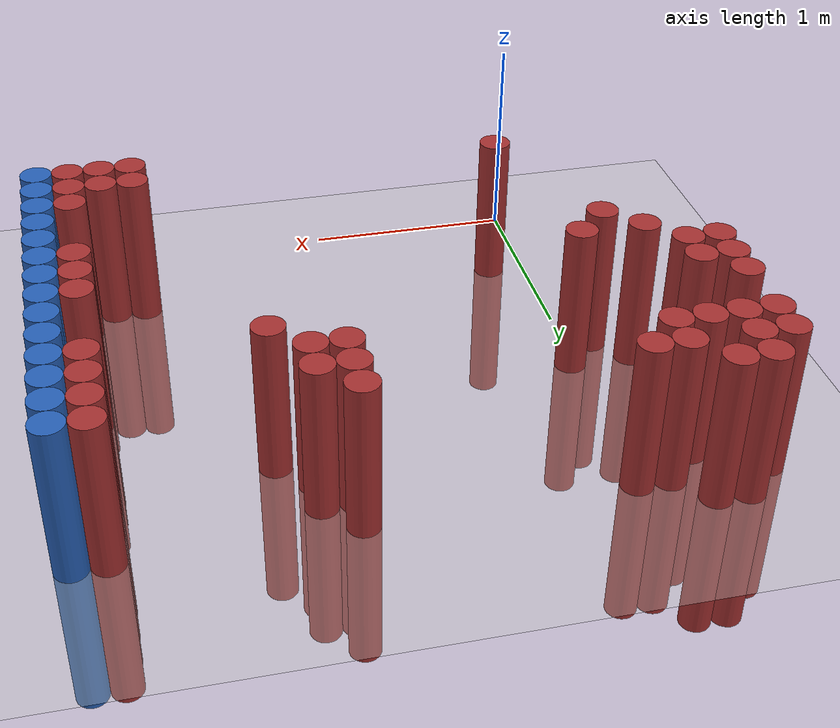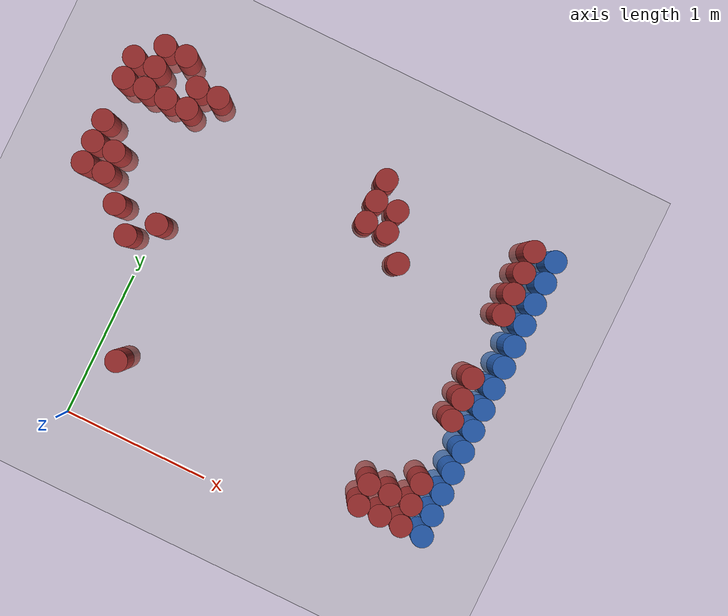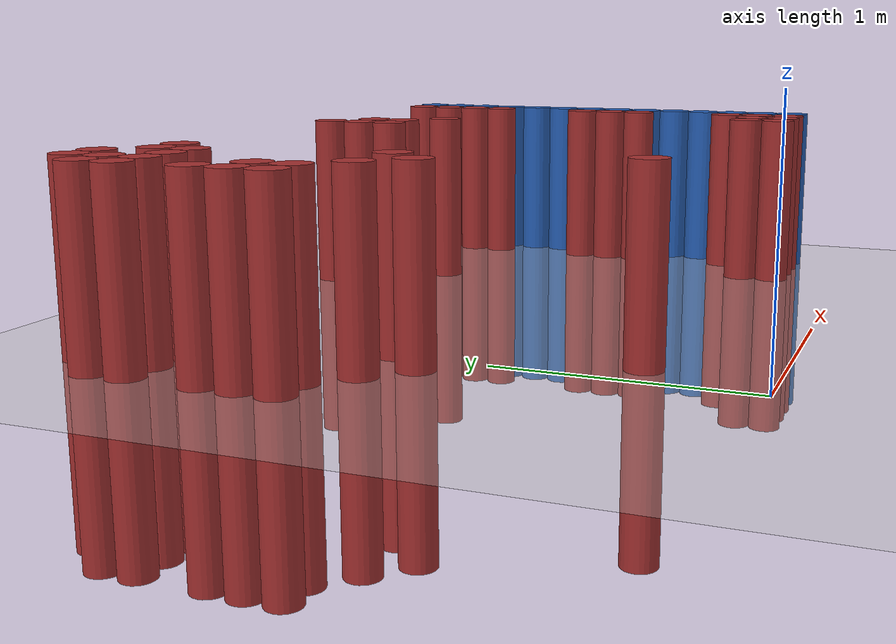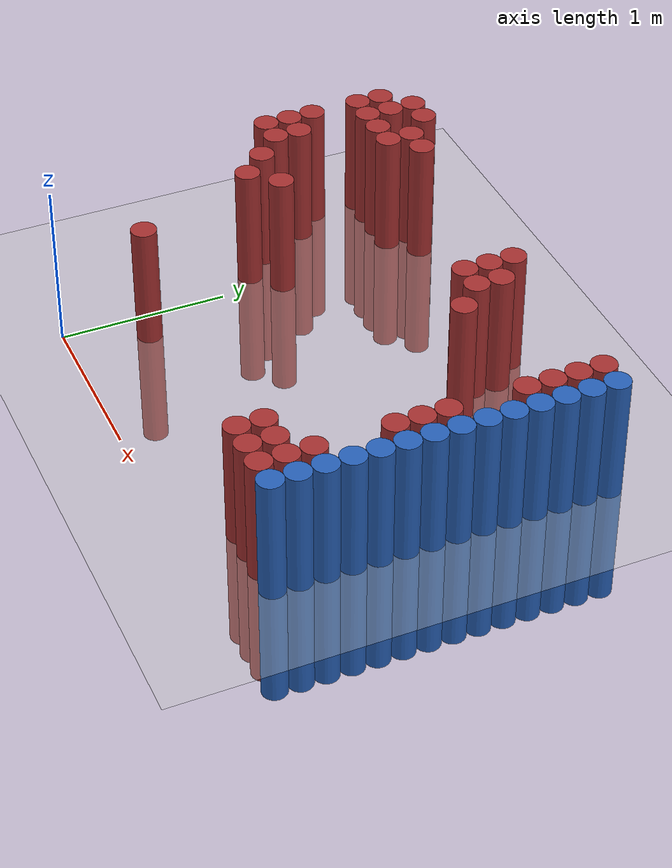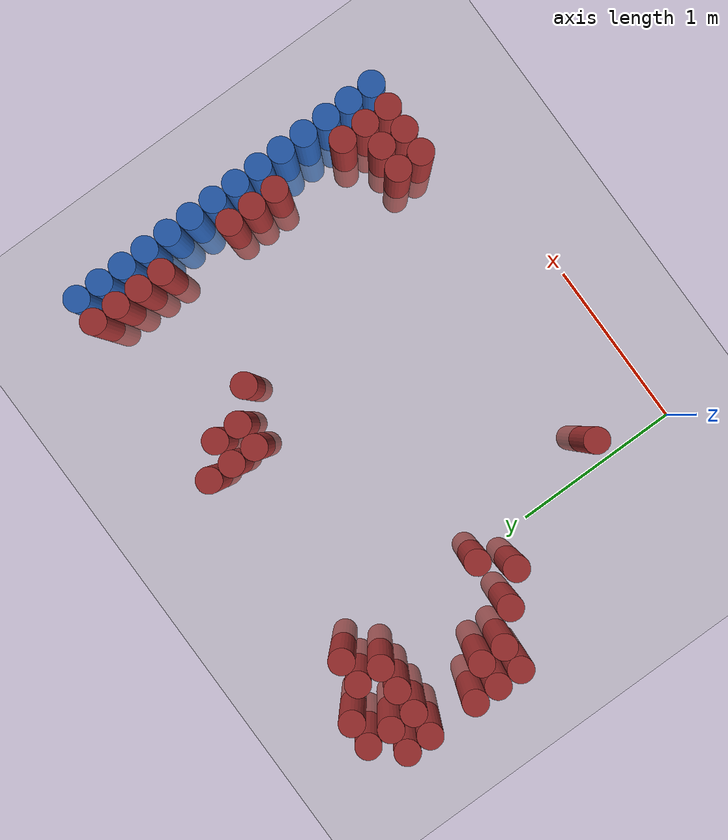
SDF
<sdf version="1.6">
 <world name="default">
  <model name="ground_plane">
   <static>1</static>
   <link name="link">
    <collision name="collision">
     <geometry><plane><normal>0 0 1</normal><size>100 100</size></plane></geometry>
     <surface><friction><ode><mu>100</mu><mu2>50</mu2></ode></friction></surface>
    </collision>
    <visual name="visual">
     <cast_shadows>0</cast_shadows>
     <geometry><plane><normal>0 0 1</normal><size>100 100</size></plane></geometry>
     <material>
      <script><uri>file://media/materials/scripts/gazebo.material</uri><name>Gazebo/Grey</name></script>
     </material>
    </visual>
   </link>
  </model>
  <model name="unit_cylinder_162">
   <static>1</static>
   <pose>-0.575000 1.525000 0.000000 0.000000 0.000000 0.000000</pose>
   <link name="link">
    <inertial>
     <mass>1</mass>
     <inertia><ixx>0.145833</ixx><ixy>0</ixy><ixz>0</ixz><iyy>0.145833</iyy><iyz>0</iyz><izz>0.125</izz></inertia>
    </inertial>
    <collision name="collision">
     <geometry><cylinder><radius>0.075000</radius><length>1.5</length></cylinder></geometry>
    </collision>
    <visual name="visual">
     <geometry><cylinder><radius>0.075000</radius><length>1.5</length></cylinder></geometry>
     <material>
      <ambient>0.648000 0.192000 0.192000 1</ambient>
      <diffuse>0.648000 0.192000 0.192000 1</diffuse>
     </material>
     <material>
      <script><name>Gazebo/Grey</name><uri>file://media/materials/scripts/gazebo.material</uri></script>
     </material>
    </visual>
   </link>
  </model>
  <model name="unit_cylinder_163">
   <static>1</static>
   <pose>-0.575000 1.675000 0.000000 0.000000 0.000000 0.000000</pose>
   <link name="link">
    <inertial>
     <mass>1</mass>
     <inertia><ixx>0.145833</ixx><ixy>0</ixy><ixz>0</ixz><iyy>0.145833</iyy><iyz>0</iyz><izz>0.125</izz></inertia>
    </inertial>
    <collision name="collision">
     <geometry><cylinder><radius>0.075000</radius><length>1.5</length></cylinder></geometry>
    </collision>
    <visual name="visual">
     <geometry><cylinder><radius>0.075000</radius><length>1.5</length></cylinder></geometry>
     <material>
      <ambient>0.648000 0.192000 0.192000 1</ambient>
      <diffuse>0.648000 0.192000 0.192000 1</diffuse>
     </material>
     <material>
      <script><name>Gazebo/Grey</name><uri>file://media/materials/scripts/gazebo.material</uri></script>
     </material>
    </visual>
   </link>
  </model>
  <model name="unit_cylinder_164">
   <static>1</static>
   <pose>-0.575000 1.825000 0.000000 0.000000 0.000000 0.000000</pose>
   <link name="link">
    <inertial>
     <mass>1</mass>
     <inertia><ixx>0.145833</ixx><ixy>0</ixy><ixz>0</ixz><iyy>0.145833</iyy><iyz>0</iyz><izz>0.125</izz></inertia>
    </inertial>
    <collision name="collision">
     <geometry><cylinder><radius>0.075000</radius><length>1.5</length></cylinder></geometry>
    </collision>
    <visual name="visual">
     <geometry><cylinder><radius>0.075000</radius><length>1.5</length></cylinder></geometry>
     <material>
      <ambient>0.648000 0.192000 0.192000 1</ambient>
      <diffuse>0.648000 0.192000 0.192000 1</diffuse>
     </material>
     <material>
      <script><name>Gazebo/Grey</name><uri>file://media/materials/scripts/gazebo.material</uri></script>
     </material>
    </visual>
   </link>
  </model>
  <model name="unit_cylinder_165">
   <static>1</static>
   <pose>-0.575000 2.125000 0.000000 0.000000 0.000000 0.000000</pose>
   <link name="link">
    <inertial>
     <mass>1</mass>
     <inertia><ixx>0.145833</ixx><ixy>0</ixy><ixz>0</ixz><iyy>0.145833</iyy><iyz>0</iyz><izz>0.125</izz></inertia>
    </inertial>
    <collision name="collision">
     <geometry><cylinder><radius>0.075000</radius><length>1.5</length></cylinder></geometry>
    </collision>
    <visual name="visual">
     <geometry><cylinder><radius>0.075000</radius><length>1.5</length></cylinder></geometry>
     <material>
      <ambient>0.648000 0.192000 0.192000 1</ambient>
      <diffuse>0.648000 0.192000 0.192000 1</diffuse>
     </material>
     <material>
      <script><name>Gazebo/Grey</name><uri>file://media/materials/scripts/gazebo.material</uri></script>
     </material>
    </visual>
   </link>
  </model>
  <model name="unit_cylinder_166">
   <static>1</static>
   <pose>-0.575000 2.275000 0.000000 0.000000 0.000000 0.000000</pose>
   <link name="link">
    <inertial>
     <mass>1</mass>
     <inertia><ixx>0.145833</ixx><ixy>0</ixy><ixz>0</ixz><iyy>0.145833</iyy><iyz>0</iyz><izz>0.125</izz></inertia>
    </inertial>
    <collision name="collision">
     <geometry><cylinder><radius>0.075000</radius><length>1.5</length></cylinder></geometry>
    </collision>
    <visual name="visual">
     <geometry><cylinder><radius>0.075000</radius><length>1.5</length></cylinder></geometry>
     <material>
      <ambient>0.648000 0.192000 0.192000 1</ambient>
      <diffuse>0.648000 0.192000 0.192000 1</diffuse>
     </material>
     <material>
      <script><name>Gazebo/Grey</name><uri>file://media/materials/scripts/gazebo.material</uri></script>
     </material>
    </visual>
   </link>
  </model>
  <model name="unit_cylinder_169">
   <static>1</static>
   <pose>-0.425000 1.525000 0.000000 0.000000 0.000000 0.000000</pose>
   <link name="link">
    <inertial>
     <mass>1</mass>
     <inertia><ixx>0.145833</ixx><ixy>0</ixy><ixz>0</ixz><iyy>0.145833</iyy><iyz>0</iyz><izz>0.125</izz></inertia>
    </inertial>
    <collision name="collision">
     <geometry><cylinder><radius>0.075000</radius><length>1.5</length></cylinder></geometry>
    </collision>
    <visual name="visual">
     <geometry><cylinder><radius>0.075000</radius><length>1.5</length></cylinder></geometry>
     <material>
      <ambient>0.648000 0.192000 0.192000 1</ambient>
      <diffuse>0.648000 0.192000 0.192000 1</diffuse>
     </material>
     <material>
      <script><name>Gazebo/Grey</name><uri>file://media/materials/scripts/gazebo.material</uri></script>
     </material>
    </visual>
   </link>
  </model>
  <model name="unit_cylinder_170">
   <static>1</static>
   <pose>-0.425000 1.675000 0.000000 0.000000 0.000000 0.000000</pose>
   <link name="link">
    <inertial>
     <mass>1</mass>
     <inertia><ixx>0.145833</ixx><ixy>0</ixy><ixz>0</ixz><iyy>0.145833</iyy><iyz>0</iyz><izz>0.125</izz></inertia>
    </inertial>
    <collision name="collision">
     <geometry><cylinder><radius>0.075000</radius><length>1.5</length></cylinder></geometry>
    </collision>
    <visual name="visual">
     <geometry><cylinder><radius>0.075000</radius><length>1.5</length></cylinder></geometry>
     <material>
      <ambient>0.648000 0.192000 0.192000 1</ambient>
      <diffuse>0.648000 0.192000 0.192000 1</diffuse>
     </material>
     <material>
      <script><name>Gazebo/Grey</name><uri>file://media/materials/scripts/gazebo.material</uri></script>
     </material>
    </visual>
   </link>
  </model>
  <model name="unit_cylinder_171">
   <static>1</static>
   <pose>-0.425000 2.125000 0.000000 0.000000 0.000000 0.000000</pose>
   <link name="link">
    <inertial>
     <mass>1</mass>
     <inertia><ixx>0.145833</ixx><ixy>0</ixy><ixz>0</ixz><iyy>0.145833</iyy><iyz>0</iyz><izz>0.125</izz></inertia>
    </inertial>
    <collision name="collision">
     <geometry><cylinder><radius>0.075000</radius><length>1.5</length></cylinder></geometry>
    </collision>
    <visual name="visual">
     <geometry><cylinder><radius>0.075000</radius><length>1.5</length></cylinder></geometry>
     <material>
      <ambient>0.648000 0.192000 0.192000 1</ambient>
      <diffuse>0.648000 0.192000 0.192000 1</diffuse>
     </material>
     <material>
      <script><name>Gazebo/Grey</name><uri>file://media/materials/scripts/gazebo.material</uri></script>
     </material>
    </visual>
   </link>
  </model>
  <model name="unit_cylinder_172">
   <static>1</static>
   <pose>-0.425000 2.275000 0.000000 0.000000 0.000000 0.000000</pose>
   <link name="link">
    <inertial>
     <mass>1</mass>
     <inertia><ixx>0.145833</ixx><ixy>0</ixy><ixz>0</ixz><iyy>0.145833</iyy><iyz>0</iyz><izz>0.125</izz></inertia>
    </inertial>
    <collision name="collision">
     <geometry><cylinder><radius>0.075000</radius><length>1.5</length></cylinder></geometry>
    </collision>
    <visual name="visual">
     <geometry><cylinder><radius>0.075000</radius><length>1.5</length></cylinder></geometry>
     <material>
      <ambient>0.648000 0.192000 0.192000 1</ambient>
      <diffuse>0.648000 0.192000 0.192000 1</diffuse>
     </material>
     <material>
      <script><name>Gazebo/Grey</name><uri>file://media/materials/scripts/gazebo.material</uri></script>
     </material>
    </visual>
   </link>
  </model>
  <model name="unit_cylinder_173">
   <static>1</static>
   <pose>-0.425000 2.425000 0.000000 0.000000 0.000000 0.000000</pose>
   <link name="link">
    <inertial>
     <mass>1</mass>
     <inertia><ixx>0.145833</ixx><ixy>0</ixy><ixz>0</ixz><iyy>0.145833</iyy><iyz>0</iyz><izz>0.125</izz></inertia>
    </inertial>
    <collision name="collision">
     <geometry><cylinder><radius>0.075000</radius><length>1.5</length></cylinder></geometry>
    </collision>
    <visual name="visual">
     <geometry><cylinder><radius>0.075000</radius><length>1.5</length></cylinder></geometry>
     <material>
      <ambient>0.648000 0.192000 0.192000 1</ambient>
      <diffuse>0.648000 0.192000 0.192000 1</diffuse>
     </material>
     <material>
      <script><name>Gazebo/Grey</name><uri>file://media/materials/scripts/gazebo.material</uri></script>
     </material>
    </visual>
   </link>
  </model>
  <model name="unit_cylinder_175">
   <static>1</static>
   <pose>-0.275000 1.375000 0.000000 0.000000 0.000000 0.000000</pose>
   <link name="link">
    <inertial>
     <mass>1</mass>
     <inertia><ixx>0.145833</ixx><ixy>0</ixy><ixz>0</ixz><iyy>0.145833</iyy><iyz>0</iyz><izz>0.125</izz></inertia>
    </inertial>
    <collision name="collision">
     <geometry><cylinder><radius>0.075000</radius><length>1.5</length></cylinder></geometry>
    </collision>
    <visual name="visual">
     <geometry><cylinder><radius>0.075000</radius><length>1.5</length></cylinder></geometry>
     <material>
      <ambient>0.648000 0.192000 0.192000 1</ambient>
      <diffuse>0.648000 0.192000 0.192000 1</diffuse>
     </material>
     <material>
      <script><name>Gazebo/Grey</name><uri>file://media/materials/scripts/gazebo.material</uri></script>
     </material>
    </visual>
   </link>
  </model>
  <model name="unit_cylinder_176">
   <static>1</static>
   <pose>-0.275000 2.125000 0.000000 0.000000 0.000000 0.000000</pose>
   <link name="link">
    <inertial>
     <mass>1</mass>
     <inertia><ixx>0.145833</ixx><ixy>0</ixy><ixz>0</ixz><iyy>0.145833</iyy><iyz>0</iyz><izz>0.125</izz></inertia>
    </inertial>
    <collision name="collision">
     <geometry><cylinder><radius>0.075000</radius><length>1.5</length></cylinder></geometry>
    </collision>
    <visual name="visual">
     <geometry><cylinder><radius>0.075000</radius><length>1.5</length></cylinder></geometry>
     <material>
      <ambient>0.648000 0.192000 0.192000 1</ambient>
      <diffuse>0.648000 0.192000 0.192000 1</diffuse>
     </material>
     <material>
      <script><name>Gazebo/Grey</name><uri>file://media/materials/scripts/gazebo.material</uri></script>
     </material>
    </visual>
   </link>
  </model>
  <model name="unit_cylinder_177">
   <static>1</static>
   <pose>-0.275000 2.425000 0.000000 0.000000 0.000000 0.000000</pose>
   <link name="link">
    <inertial>
     <mass>1</mass>
     <inertia><ixx>0.145833</ixx><ixy>0</ixy><ixz>0</ixz><iyy>0.145833</iyy><iyz>0</iyz><izz>0.125</izz></inertia>
    </inertial>
    <collision name="collision">
     <geometry><cylinder><radius>0.075000</radius><length>1.5</length></cylinder></geometry>
    </collision>
    <visual name="visual">
     <geometry><cylinder><radius>0.075000</radius><length>1.5</length></cylinder></geometry>
     <material>
      <ambient>0.648000 0.192000 0.192000 1</ambient>
      <diffuse>0.648000 0.192000 0.192000 1</diffuse>
     </material>
     <material>
      <script><name>Gazebo/Grey</name><uri>file://media/materials/scripts/gazebo.material</uri></script>
     </material>
    </visual>
   </link>
  </model>
  <model name="unit_cylinder_179">
   <static>1</static>
   <pose>-0.125000 1.225000 0.000000 0.000000 0.000000 0.000000</pose>
   <link name="link">
    <inertial>
     <mass>1</mass>
     <inertia><ixx>0.145833</ixx><ixy>0</ixy><ixz>0</ixz><iyy>0.145833</iyy><iyz>0</iyz><izz>0.125</izz></inertia>
    </inertial>
    <collision name="collision">
     <geometry><cylinder><radius>0.075000</radius><length>1.5</length></cylinder></geometry>
    </collision>
    <visual name="visual">
     <geometry><cylinder><radius>0.075000</radius><length>1.5</length></cylinder></geometry>
     <material>
      <ambient>0.648000 0.192000 0.192000 1</ambient>
      <diffuse>0.648000 0.192000 0.192000 1</diffuse>
     </material>
     <material>
      <script><name>Gazebo/Grey</name><uri>file://media/materials/scripts/gazebo.material</uri></script>
     </material>
    </visual>
   </link>
  </model>
  <model name="unit_cylinder_180">
   <static>1</static>
   <pose>-0.125000 2.125000 0.000000 0.000000 0.000000 0.000000</pose>
   <link name="link">
    <inertial>
     <mass>1</mass>
     <inertia><ixx>0.145833</ixx><ixy>0</ixy><ixz>0</ixz><iyy>0.145833</iyy><iyz>0</iyz><izz>0.125</izz></inertia>
    </inertial>
    <collision name="collision">
     <geometry><cylinder><radius>0.075000</radius><length>1.5</length></cylinder></geometry>
    </collision>
    <visual name="visual">
     <geometry><cylinder><radius>0.075000</radius><length>1.5</length></cylinder></geometry>
     <material>
      <ambient>0.648000 0.192000 0.192000 1</ambient>
      <diffuse>0.648000 0.192000 0.192000 1</diffuse>
     </material>
     <material>
      <script><name>Gazebo/Grey</name><uri>file://media/materials/scripts/gazebo.material</uri></script>
     </material>
    </visual>
   </link>
  </model>
  <model name="unit_cylinder_181">
   <static>1</static>
   <pose>-0.125000 2.275000 0.000000 0.000000 0.000000 0.000000</pose>
   <link name="link">
    <inertial>
     <mass>1</mass>
     <inertia><ixx>0.145833</ixx><ixy>0</ixy><ixz>0</ixz><iyy>0.145833</iyy><iyz>0</iyz><izz>0.125</izz></inertia>
    </inertial>
    <collision name="collision">
     <geometry><cylinder><radius>0.075000</radius><length>1.5</length></cylinder></geometry>
    </collision>
    <visual name="visual">
     <geometry><cylinder><radius>0.075000</radius><length>1.5</length></cylinder></geometry>
     <material>
      <ambient>0.648000 0.192000 0.192000 1</ambient>
      <diffuse>0.648000 0.192000 0.192000 1</diffuse>
     </material>
     <material>
      <script><name>Gazebo/Grey</name><uri>file://media/materials/scripts/gazebo.material</uri></script>
     </material>
    </visual>
   </link>
  </model>
  <model name="unit_cylinder_185">
   <static>1</static>
   <pose>0.025000 1.375000 0.000000 0.000000 0.000000 0.000000</pose>
   <link name="link">
    <inertial>
     <mass>1</mass>
     <inertia><ixx>0.145833</ixx><ixy>0</ixy><ixz>0</ixz><iyy>0.145833</iyy><iyz>0</iyz><izz>0.125</izz></inertia>
    </inertial>
    <collision name="collision">
     <geometry><cylinder><radius>0.075000</radius><length>1.5</length></cylinder></geometry>
    </collision>
    <visual name="visual">
     <geometry><cylinder><radius>0.075000</radius><length>1.5</length></cylinder></geometry>
     <material>
      <ambient>0.648000 0.192000 0.192000 1</ambient>
      <diffuse>0.648000 0.192000 0.192000 1</diffuse>
     </material>
     <material>
      <script><name>Gazebo/Grey</name><uri>file://media/materials/scripts/gazebo.material</uri></script>
     </material>
    </visual>
   </link>
  </model>
  <model name="unit_cylinder_186">
   <static>1</static>
   <pose>0.025000 2.275000 0.000000 0.000000 0.000000 0.000000</pose>
   <link name="link">
    <inertial>
     <mass>1</mass>
     <inertia><ixx>0.145833</ixx><ixy>0</ixy><ixz>0</ixz><iyy>0.145833</iyy><iyz>0</iyz><izz>0.125</izz></inertia>
    </inertial>
    <collision name="collision">
     <geometry><cylinder><radius>0.075000</radius><length>1.5</length></cylinder></geometry>
    </collision>
    <visual name="visual">
     <geometry><cylinder><radius>0.075000</radius><length>1.5</length></cylinder></geometry>
     <material>
      <ambient>0.648000 0.192000 0.192000 1</ambient>
      <diffuse>0.648000 0.192000 0.192000 1</diffuse>
     </material>
     <material>
      <script><name>Gazebo/Grey</name><uri>file://media/materials/scripts/gazebo.material</uri></script>
     </material>
    </visual>
   </link>
  </model>
  <model name="unit_cylinder_191">
   <static>1</static>
   <pose>0.175000 0.475000 0.000000 0.000000 0.000000 0.000000</pose>
   <link name="link">
    <inertial>
     <mass>1</mass>
     <inertia><ixx>0.145833</ixx><ixy>0</ixy><ixz>0</ixz><iyy>0.145833</iyy><iyz>0</iyz><izz>0.125</izz></inertia>
    </inertial>
    <collision name="collision">
     <geometry><cylinder><radius>0.075000</radius><length>1.5</length></cylinder></geometry>
    </collision>
    <visual name="visual">
     <geometry><cylinder><radius>0.075000</radius><length>1.5</length></cylinder></geometry>
     <material>
      <ambient>0.648000 0.192000 0.192000 1</ambient>
      <diffuse>0.648000 0.192000 0.192000 1</diffuse>
     </material>
     <material>
      <script><name>Gazebo/Grey</name><uri>file://media/materials/scripts/gazebo.material</uri></script>
     </material>
    </visual>
   </link>
  </model>
  <model name="unit_cylinder_198">
   <static>1</static>
   <pose>1.225000 1.975000 0.000000 0.000000 0.000000 0.000000</pose>
   <link name="link">
    <inertial>
     <mass>1</mass>
     <inertia><ixx>0.145833</ixx><ixy>0</ixy><ixz>0</ixz><iyy>0.145833</iyy><iyz>0</iyz><izz>0.125</izz></inertia>
    </inertial>
    <collision name="collision">
     <geometry><cylinder><radius>0.075000</radius><length>1.5</length></cylinder></geometry>
    </collision>
    <visual name="visual">
     <geometry><cylinder><radius>0.075000</radius><length>1.5</length></cylinder></geometry>
     <material>
      <ambient>0.648000 0.192000 0.192000 1</ambient>
      <diffuse>0.648000 0.192000 0.192000 1</diffuse>
     </material>
     <material>
      <script><name>Gazebo/Grey</name><uri>file://media/materials/scripts/gazebo.material</uri></script>
     </material>
    </visual>
   </link>
  </model>
  <model name="unit_cylinder_199">
   <static>1</static>
   <pose>1.225000 2.125000 0.000000 0.000000 0.000000 0.000000</pose>
   <link name="link">
    <inertial>
     <mass>1</mass>
     <inertia><ixx>0.145833</ixx><ixy>0</ixy><ixz>0</ixz><iyy>0.145833</iyy><iyz>0</iyz><izz>0.125</izz></inertia>
    </inertial>
    <collision name="collision">
     <geometry><cylinder><radius>0.075000</radius><length>1.5</length></cylinder></geometry>
    </collision>
    <visual name="visual">
     <geometry><cylinder><radius>0.075000</radius><length>1.5</length></cylinder></geometry>
     <material>
      <ambient>0.648000 0.192000 0.192000 1</ambient>
      <diffuse>0.648000 0.192000 0.192000 1</diffuse>
     </material>
     <material>
      <script><name>Gazebo/Grey</name><uri>file://media/materials/scripts/gazebo.material</uri></script>
     </material>
    </visual>
   </link>
  </model>
  <model name="unit_cylinder_200">
   <static>1</static>
   <pose>1.225000 2.275000 0.000000 0.000000 0.000000 0.000000</pose>
   <link name="link">
    <inertial>
     <mass>1</mass>
     <inertia><ixx>0.145833</ixx><ixy>0</ixy><ixz>0</ixz><iyy>0.145833</iyy><iyz>0</iyz><izz>0.125</izz></inertia>
    </inertial>
    <collision name="collision">
     <geometry><cylinder><radius>0.075000</radius><length>1.5</length></cylinder></geometry>
    </collision>
    <visual name="visual">
     <geometry><cylinder><radius>0.075000</radius><length>1.5</length></cylinder></geometry>
     <material>
      <ambient>0.648000 0.192000 0.192000 1</ambient>
      <diffuse>0.648000 0.192000 0.192000 1</diffuse>
     </material>
     <material>
      <script><name>Gazebo/Grey</name><uri>file://media/materials/scripts/gazebo.material</uri></script>
     </material>
    </visual>
   </link>
  </model>
  <model name="unit_cylinder_201">
   <static>1</static>
   <pose>1.375000 1.975000 0.000000 0.000000 0.000000 0.000000</pose>
   <link name="link">
    <inertial>
     <mass>1</mass>
     <inertia><ixx>0.145833</ixx><ixy>0</ixy><ixz>0</ixz><iyy>0.145833</iyy><iyz>0</iyz><izz>0.125</izz></inertia>
    </inertial>
    <collision name="collision">
     <geometry><cylinder><radius>0.075000</radius><length>1.5</length></cylinder></geometry>
    </collision>
    <visual name="visual">
     <geometry><cylinder><radius>0.075000</radius><length>1.5</length></cylinder></geometry>
     <material>
      <ambient>0.648000 0.192000 0.192000 1</ambient>
      <diffuse>0.648000 0.192000 0.192000 1</diffuse>
     </material>
     <material>
      <script><name>Gazebo/Grey</name><uri>file://media/materials/scripts/gazebo.material</uri></script>
     </material>
    </visual>
   </link>
  </model>
  <model name="unit_cylinder_202">
   <static>1</static>
   <pose>1.375000 2.125000 0.000000 0.000000 0.000000 0.000000</pose>
   <link name="link">
    <inertial>
     <mass>1</mass>
     <inertia><ixx>0.145833</ixx><ixy>0</ixy><ixz>0</ixz><iyy>0.145833</iyy><iyz>0</iyz><izz>0.125</izz></inertia>
    </inertial>
    <collision name="collision">
     <geometry><cylinder><radius>0.075000</radius><length>1.5</length></cylinder></geometry>
    </collision>
    <visual name="visual">
     <geometry><cylinder><radius>0.075000</radius><length>1.5</length></cylinder></geometry>
     <material>
      <ambient>0.648000 0.192000 0.192000 1</ambient>
      <diffuse>0.648000 0.192000 0.192000 1</diffuse>
     </material>
     <material>
      <script><name>Gazebo/Grey</name><uri>file://media/materials/scripts/gazebo.material</uri></script>
     </material>
    </visual>
   </link>
  </model>
  <model name="unit_cylinder_203">
   <static>1</static>
   <pose>1.525000 1.825000 0.000000 0.000000 0.000000 0.000000</pose>
   <link name="link">
    <inertial>
     <mass>1</mass>
     <inertia><ixx>0.145833</ixx><ixy>0</ixy><ixz>0</ixz><iyy>0.145833</iyy><iyz>0</iyz><izz>0.125</izz></inertia>
    </inertial>
    <collision name="collision">
     <geometry><cylinder><radius>0.075000</radius><length>1.5</length></cylinder></geometry>
    </collision>
    <visual name="visual">
     <geometry><cylinder><radius>0.075000</radius><length>1.5</length></cylinder></geometry>
     <material>
      <ambient>0.648000 0.192000 0.192000 1</ambient>
      <diffuse>0.648000 0.192000 0.192000 1</diffuse>
     </material>
     <material>
      <script><name>Gazebo/Grey</name><uri>file://media/materials/scripts/gazebo.material</uri></script>
     </material>
    </visual>
   </link>
  </model>
  <model name="unit_cylinder_209">
   <static>1</static>
   <pose>1.975000 0.325000 0.000000 0.000000 0.000000 0.000000</pose>
   <link name="link">
    <inertial>
     <mass>1</mass>
     <inertia><ixx>0.145833</ixx><ixy>0</ixy><ixz>0</ixz><iyy>0.145833</iyy><iyz>0</iyz><izz>0.125</izz></inertia>
    </inertial>
    <collision name="collision">
     <geometry><cylinder><radius>0.075000</radius><length>1.5</length></cylinder></geometry>
    </collision>
    <visual name="visual">
     <geometry><cylinder><radius>0.075000</radius><length>1.5</length></cylinder></geometry>
     <material>
      <ambient>0.648000 0.192000 0.192000 1</ambient>
      <diffuse>0.648000 0.192000 0.192000 1</diffuse>
     </material>
     <material>
      <script><name>Gazebo/Grey</name><uri>file://media/materials/scripts/gazebo.material</uri></script>
     </material>
    </visual>
   </link>
  </model>
  <model name="unit_cylinder_210">
   <static>1</static>
   <pose>1.975000 0.475000 0.000000 0.000000 0.000000 0.000000</pose>
   <link name="link">
    <inertial>
     <mass>1</mass>
     <inertia><ixx>0.145833</ixx><ixy>0</ixy><ixz>0</ixz><iyy>0.145833</iyy><iyz>0</iyz><izz>0.125</izz></inertia>
    </inertial>
    <collision name="collision">
     <geometry><cylinder><radius>0.075000</radius><length>1.5</length></cylinder></geometry>
    </collision>
    <visual name="visual">
     <geometry><cylinder><radius>0.075000</radius><length>1.5</length></cylinder></geometry>
     <material>
      <ambient>0.648000 0.192000 0.192000 1</ambient>
      <diffuse>0.648000 0.192000 0.192000 1</diffuse>
     </material>
     <material>
      <script><name>Gazebo/Grey</name><uri>file://media/materials/scripts/gazebo.material</uri></script>
     </material>
    </visual>
   </link>
  </model>
  <model name="unit_cylinder_213">
   <static>1</static>
   <pose>2.125000 0.325000 0.000000 0.000000 0.000000 0.000000</pose>
   <link name="link">
    <inertial>
     <mass>1</mass>
     <inertia><ixx>0.145833</ixx><ixy>0</ixy><ixz>0</ixz><iyy>0.145833</iyy><iyz>0</iyz><izz>0.125</izz></inertia>
    </inertial>
    <collision name="collision">
     <geometry><cylinder><radius>0.075000</radius><length>1.5</length></cylinder></geometry>
    </collision>
    <visual name="visual">
     <geometry><cylinder><radius>0.075000</radius><length>1.5</length></cylinder></geometry>
     <material>
      <ambient>0.648000 0.192000 0.192000 1</ambient>
      <diffuse>0.648000 0.192000 0.192000 1</diffuse>
     </material>
     <material>
      <script><name>Gazebo/Grey</name><uri>file://media/materials/scripts/gazebo.material</uri></script>
     </material>
    </visual>
   </link>
  </model>
  <model name="unit_cylinder_214">
   <static>1</static>
   <pose>2.125000 0.475000 0.000000 0.000000 0.000000 0.000000</pose>
   <link name="link">
    <inertial>
     <mass>1</mass>
     <inertia><ixx>0.145833</ixx><ixy>0</ixy><ixz>0</ixz><iyy>0.145833</iyy><iyz>0</iyz><izz>0.125</izz></inertia>
    </inertial>
    <collision name="collision">
     <geometry><cylinder><radius>0.075000</radius><length>1.5</length></cylinder></geometry>
    </collision>
    <visual name="visual">
     <geometry><cylinder><radius>0.075000</radius><length>1.5</length></cylinder></geometry>
     <material>
      <ambient>0.648000 0.192000 0.192000 1</ambient>
      <diffuse>0.648000 0.192000 0.192000 1</diffuse>
     </material>
     <material>
      <script><name>Gazebo/Grey</name><uri>file://media/materials/scripts/gazebo.material</uri></script>
     </material>
    </visual>
   </link>
  </model>
  <model name="unit_cylinder_217">
   <static>1</static>
   <pose>2.275000 0.325000 0.000000 0.000000 0.000000 0.000000</pose>
   <link name="link">
    <inertial>
     <mass>1</mass>
     <inertia><ixx>0.145833</ixx><ixy>0</ixy><ixz>0</ixz><iyy>0.145833</iyy><iyz>0</iyz><izz>0.125</izz></inertia>
    </inertial>
    <collision name="collision">
     <geometry><cylinder><radius>0.075000</radius><length>1.5</length></cylinder></geometry>
    </collision>
    <visual name="visual">
     <geometry><cylinder><radius>0.075000</radius><length>1.5</length></cylinder></geometry>
     <material>
      <ambient>0.648000 0.192000 0.192000 1</ambient>
      <diffuse>0.648000 0.192000 0.192000 1</diffuse>
     </material>
     <material>
      <script><name>Gazebo/Grey</name><uri>file://media/materials/scripts/gazebo.material</uri></script>
     </material>
    </visual>
   </link>
  </model>
  <model name="unit_cylinder_218">
   <static>1</static>
   <pose>2.275000 0.475000 0.000000 0.000000 0.000000 0.000000</pose>
   <link name="link">
    <inertial>
     <mass>1</mass>
     <inertia><ixx>0.145833</ixx><ixy>0</ixy><ixz>0</ixz><iyy>0.145833</iyy><iyz>0</iyz><izz>0.125</izz></inertia>
    </inertial>
    <collision name="collision">
     <geometry><cylinder><radius>0.075000</radius><length>1.5</length></cylinder></geometry>
    </collision>
    <visual name="visual">
     <geometry><cylinder><radius>0.075000</radius><length>1.5</length></cylinder></geometry>
     <material>
      <ambient>0.648000 0.192000 0.192000 1</ambient>
      <diffuse>0.648000 0.192000 0.192000 1</diffuse>
     </material>
     <material>
      <script><name>Gazebo/Grey</name><uri>file://media/materials/scripts/gazebo.material</uri></script>
     </material>
    </visual>
   </link>
  </model>
  <model name="unit_cylinder_219">
   <static>1</static>
   <pose>2.275000 0.625000 0.000000 0.000000 0.000000 0.000000</pose>
   <link name="link">
    <inertial>
     <mass>1</mass>
     <inertia><ixx>0.145833</ixx><ixy>0</ixy><ixz>0</ixz><iyy>0.145833</iyy><iyz>0</iyz><izz>0.125</izz></inertia>
    </inertial>
    <collision name="collision">
     <geometry><cylinder><radius>0.075000</radius><length>1.5</length></cylinder></geometry>
    </collision>
    <visual name="visual">
     <geometry><cylinder><radius>0.075000</radius><length>1.5</length></cylinder></geometry>
     <material>
      <ambient>0.648000 0.192000 0.192000 1</ambient>
      <diffuse>0.648000 0.192000 0.192000 1</diffuse>
     </material>
     <material>
      <script><name>Gazebo/Grey</name><uri>file://media/materials/scripts/gazebo.material</uri></script>
     </material>
    </visual>
   </link>
  </model>
  <model name="unit_cylinder_220">
   <static>1</static>
   <pose>2.275000 1.075000 0.000000 0.000000 0.000000 0.000000</pose>
   <link name="link">
    <inertial>
     <mass>1</mass>
     <inertia><ixx>0.145833</ixx><ixy>0</ixy><ixz>0</ixz><iyy>0.145833</iyy><iyz>0</iyz><izz>0.125</izz></inertia>
    </inertial>
    <collision name="collision">
     <geometry><cylinder><radius>0.075000</radius><length>1.5</length></cylinder></geometry>
    </collision>
    <visual name="visual">
     <geometry><cylinder><radius>0.075000</radius><length>1.5</length></cylinder></geometry>
     <material>
      <ambient>0.648000 0.192000 0.192000 1</ambient>
      <diffuse>0.648000 0.192000 0.192000 1</diffuse>
     </material>
     <material>
      <script><name>Gazebo/Grey</name><uri>file://media/materials/scripts/gazebo.material</uri></script>
     </material>
    </visual>
   </link>
  </model>
  <model name="unit_cylinder_221">
   <static>1</static>
   <pose>2.275000 1.225000 0.000000 0.000000 0.000000 0.000000</pose>
   <link name="link">
    <inertial>
     <mass>1</mass>
     <inertia><ixx>0.145833</ixx><ixy>0</ixy><ixz>0</ixz><iyy>0.145833</iyy><iyz>0</iyz><izz>0.125</izz></inertia>
    </inertial>
    <collision name="collision">
     <geometry><cylinder><radius>0.075000</radius><length>1.5</length></cylinder></geometry>
    </collision>
    <visual name="visual">
     <geometry><cylinder><radius>0.075000</radius><length>1.5</length></cylinder></geometry>
     <material>
      <ambient>0.648000 0.192000 0.192000 1</ambient>
      <diffuse>0.648000 0.192000 0.192000 1</diffuse>
     </material>
     <material>
      <script><name>Gazebo/Grey</name><uri>file://media/materials/scripts/gazebo.material</uri></script>
     </material>
    </visual>
   </link>
  </model>
  <model name="unit_cylinder_222">
   <static>1</static>
   <pose>2.275000 1.375000 0.000000 0.000000 0.000000 0.000000</pose>
   <link name="link">
    <inertial>
     <mass>1</mass>
     <inertia><ixx>0.145833</ixx><ixy>0</ixy><ixz>0</ixz><iyy>0.145833</iyy><iyz>0</iyz><izz>0.125</izz></inertia>
    </inertial>
    <collision name="collision">
     <geometry><cylinder><radius>0.075000</radius><length>1.5</length></cylinder></geometry>
    </collision>
    <visual name="visual">
     <geometry><cylinder><radius>0.075000</radius><length>1.5</length></cylinder></geometry>
     <material>
      <ambient>0.648000 0.192000 0.192000 1</ambient>
      <diffuse>0.648000 0.192000 0.192000 1</diffuse>
     </material>
     <material>
      <script><name>Gazebo/Grey</name><uri>file://media/materials/scripts/gazebo.material</uri></script>
     </material>
    </visual>
   </link>
  </model>
  <model name="unit_cylinder_223">
   <static>1</static>
   <pose>2.275000 1.825000 0.000000 0.000000 0.000000 0.000000</pose>
   <link name="link">
    <inertial>
     <mass>1</mass>
     <inertia><ixx>0.145833</ixx><ixy>0</ixy><ixz>0</ixz><iyy>0.145833</iyy><iyz>0</iyz><izz>0.125</izz></inertia>
    </inertial>
    <collision name="collision">
     <geometry><cylinder><radius>0.075000</radius><length>1.5</length></cylinder></geometry>
    </collision>
    <visual name="visual">
     <geometry><cylinder><radius>0.075000</radius><length>1.5</length></cylinder></geometry>
     <material>
      <ambient>0.648000 0.192000 0.192000 1</ambient>
      <diffuse>0.648000 0.192000 0.192000 1</diffuse>
     </material>
     <material>
      <script><name>Gazebo/Grey</name><uri>file://media/materials/scripts/gazebo.material</uri></script>
     </material>
    </visual>
   </link>
  </model>
  <model name="unit_cylinder_224">
   <static>1</static>
   <pose>2.275000 1.975000 0.000000 0.000000 0.000000 0.000000</pose>
   <link name="link">
    <inertial>
     <mass>1</mass>
     <inertia><ixx>0.145833</ixx><ixy>0</ixy><ixz>0</ixz><iyy>0.145833</iyy><iyz>0</iyz><izz>0.125</izz></inertia>
    </inertial>
    <collision name="collision">
     <geometry><cylinder><radius>0.075000</radius><length>1.5</length></cylinder></geometry>
    </collision>
    <visual name="visual">
     <geometry><cylinder><radius>0.075000</radius><length>1.5</length></cylinder></geometry>
     <material>
      <ambient>0.648000 0.192000 0.192000 1</ambient>
      <diffuse>0.648000 0.192000 0.192000 1</diffuse>
     </material>
     <material>
      <script><name>Gazebo/Grey</name><uri>file://media/materials/scripts/gazebo.material</uri></script>
     </material>
    </visual>
   </link>
  </model>
  <model name="unit_cylinder_225">
   <static>1</static>
   <pose>2.275000 2.125000 0.000000 0.000000 0.000000 0.000000</pose>
   <link name="link">
    <inertial>
     <mass>1</mass>
     <inertia><ixx>0.145833</ixx><ixy>0</ixy><ixz>0</ixz><iyy>0.145833</iyy><iyz>0</iyz><izz>0.125</izz></inertia>
    </inertial>
    <collision name="collision">
     <geometry><cylinder><radius>0.075000</radius><length>1.5</length></cylinder></geometry>
    </collision>
    <visual name="visual">
     <geometry><cylinder><radius>0.075000</radius><length>1.5</length></cylinder></geometry>
     <material>
      <ambient>0.648000 0.192000 0.192000 1</ambient>
      <diffuse>0.648000 0.192000 0.192000 1</diffuse>
     </material>
     <material>
      <script><name>Gazebo/Grey</name><uri>file://media/materials/scripts/gazebo.material</uri></script>
     </material>
    </visual>
   </link>
  </model>
  <model name="unit_cylinder_226">
   <static>1</static>
   <pose>2.275000 2.275000 0.000000 0.000000 0.000000 0.000000</pose>
   <link name="link">
    <inertial>
     <mass>1</mass>
     <inertia><ixx>0.145833</ixx><ixy>0</ixy><ixz>0</ixz><iyy>0.145833</iyy><iyz>0</iyz><izz>0.125</izz></inertia>
    </inertial>
    <collision name="collision">
     <geometry><cylinder><radius>0.075000</radius><length>1.5</length></cylinder></geometry>
    </collision>
    <visual name="visual">
     <geometry><cylinder><radius>0.075000</radius><length>1.5</length></cylinder></geometry>
     <material>
      <ambient>0.648000 0.192000 0.192000 1</ambient>
      <diffuse>0.648000 0.192000 0.192000 1</diffuse>
     </material>
     <material>
      <script><name>Gazebo/Grey</name><uri>file://media/materials/scripts/gazebo.material</uri></script>
     </material>
    </visual>
   </link>
  </model>
  <model name="unit_cylinder_232">
   <static>1</static>
   <pose>2.425000 0.325000 0.000000 0.000000 0.000000 0.000000</pose>
   <link name="link">
    <inertial>
     <mass>1</mass>
     <inertia><ixx>0.145833</ixx><ixy>0</ixy><ixz>0</ixz><iyy>0.145833</iyy><iyz>0</iyz><izz>0.125</izz></inertia>
    </inertial>
    <collision name="collision">
     <geometry><cylinder><radius>0.075000</radius><length>1.5</length></cylinder></geometry>
    </collision>
    <visual name="visual">
     <geometry><cylinder><radius>0.075000</radius><length>1.5</length></cylinder></geometry>
     <material>
      <ambient>0.152000 0.379000 0.720000 1</ambient>
      <diffuse>0.152000 0.379000 0.720000 1</diffuse>
     </material>
     <material>
      <script><name>Gazebo/Grey</name><uri>file://media/materials/scripts/gazebo.material</uri></script>
     </material>
    </visual>
   </link>
  </model>
  <model name="unit_cylinder_233">
   <static>1</static>
   <pose>2.425000 0.475000 0.000000 0.000000 0.000000 0.000000</pose>
   <link name="link">
    <inertial>
     <mass>1</mass>
     <inertia><ixx>0.145833</ixx><ixy>0</ixy><ixz>0</ixz><iyy>0.145833</iyy><iyz>0</iyz><izz>0.125</izz></inertia>
    </inertial>
    <collision name="collision">
     <geometry><cylinder><radius>0.075000</radius><length>1.5</length></cylinder></geometry>
    </collision>
    <visual name="visual">
     <geometry><cylinder><radius>0.075000</radius><length>1.5</length></cylinder></geometry>
     <material>
      <ambient>0.152000 0.379000 0.720000 1</ambient>
      <diffuse>0.152000 0.379000 0.720000 1</diffuse>
     </material>
     <material>
      <script><name>Gazebo/Grey</name><uri>file://media/materials/scripts/gazebo.material</uri></script>
     </material>
    </visual>
   </link>
  </model>
  <model name="unit_cylinder_234">
   <static>1</static>
   <pose>2.425000 0.625000 0.000000 0.000000 0.000000 0.000000</pose>
   <link name="link">
    <inertial>
     <mass>1</mass>
     <inertia><ixx>0.145833</ixx><ixy>0</ixy><ixz>0</ixz><iyy>0.145833</iyy><iyz>0</iyz><izz>0.125</izz></inertia>
    </inertial>
    <collision name="collision">
     <geometry><cylinder><radius>0.075000</radius><length>1.5</length></cylinder></geometry>
    </collision>
    <visual name="visual">
     <geometry><cylinder><radius>0.075000</radius><length>1.5</length></cylinder></geometry>
     <material>
      <ambient>0.152000 0.379000 0.720000 1</ambient>
      <diffuse>0.152000 0.379000 0.720000 1</diffuse>
     </material>
     <material>
      <script><name>Gazebo/Grey</name><uri>file://media/materials/scripts/gazebo.material</uri></script>
     </material>
    </visual>
   </link>
  </model>
  <model name="unit_cylinder_235">
   <static>1</static>
   <pose>2.425000 0.775000 0.000000 0.000000 0.000000 0.000000</pose>
   <link name="link">
    <inertial>
     <mass>1</mass>
     <inertia><ixx>0.145833</ixx><ixy>0</ixy><ixz>0</ixz><iyy>0.145833</iyy><iyz>0</iyz><izz>0.125</izz></inertia>
    </inertial>
    <collision name="collision">
     <geometry><cylinder><radius>0.075000</radius><length>1.5</length></cylinder></geometry>
    </collision>
    <visual name="visual">
     <geometry><cylinder><radius>0.075000</radius><length>1.5</length></cylinder></geometry>
     <material>
      <ambient>0.152000 0.379000 0.720000 1</ambient>
      <diffuse>0.152000 0.379000 0.720000 1</diffuse>
     </material>
     <material>
      <script><name>Gazebo/Grey</name><uri>file://media/materials/scripts/gazebo.material</uri></script>
     </material>
    </visual>
   </link>
  </model>
  <model name="unit_cylinder_236">
   <static>1</static>
   <pose>2.425000 0.925000 0.000000 0.000000 0.000000 0.000000</pose>
   <link name="link">
    <inertial>
     <mass>1</mass>
     <inertia><ixx>0.145833</ixx><ixy>0</ixy><ixz>0</ixz><iyy>0.145833</iyy><iyz>0</iyz><izz>0.125</izz></inertia>
    </inertial>
    <collision name="collision">
     <geometry><cylinder><radius>0.075000</radius><length>1.5</length></cylinder></geometry>
    </collision>
    <visual name="visual">
     <geometry><cylinder><radius>0.075000</radius><length>1.5</length></cylinder></geometry>
     <material>
      <ambient>0.152000 0.379000 0.720000 1</ambient>
      <diffuse>0.152000 0.379000 0.720000 1</diffuse>
     </material>
     <material>
      <script><name>Gazebo/Grey</name><uri>file://media/materials/scripts/gazebo.material</uri></script>
     </material>
    </visual>
   </link>
  </model>
  <model name="unit_cylinder_237">
   <static>1</static>
   <pose>2.425000 1.075000 0.000000 0.000000 0.000000 0.000000</pose>
   <link name="link">
    <inertial>
     <mass>1</mass>
     <inertia><ixx>0.145833</ixx><ixy>0</ixy><ixz>0</ixz><iyy>0.145833</iyy><iyz>0</iyz><izz>0.125</izz></inertia>
    </inertial>
    <collision name="collision">
     <geometry><cylinder><radius>0.075000</radius><length>1.5</length></cylinder></geometry>
    </collision>
    <visual name="visual">
     <geometry><cylinder><radius>0.075000</radius><length>1.5</length></cylinder></geometry>
     <material>
      <ambient>0.152000 0.379000 0.720000 1</ambient>
      <diffuse>0.152000 0.379000 0.720000 1</diffuse>
     </material>
     <material>
      <script><name>Gazebo/Grey</name><uri>file://media/materials/scripts/gazebo.material</uri></script>
     </material>
    </visual>
   </link>
  </model>
  <model name="unit_cylinder_238">
   <static>1</static>
   <pose>2.425000 1.225000 0.000000 0.000000 0.000000 0.000000</pose>
   <link name="link">
    <inertial>
     <mass>1</mass>
     <inertia><ixx>0.145833</ixx><ixy>0</ixy><ixz>0</ixz><iyy>0.145833</iyy><iyz>0</iyz><izz>0.125</izz></inertia>
    </inertial>
    <collision name="collision">
     <geometry><cylinder><radius>0.075000</radius><length>1.5</length></cylinder></geometry>
    </collision>
    <visual name="visual">
     <geometry><cylinder><radius>0.075000</radius><length>1.5</length></cylinder></geometry>
     <material>
      <ambient>0.152000 0.379000 0.720000 1</ambient>
      <diffuse>0.152000 0.379000 0.720000 1</diffuse>
     </material>
     <material>
      <script><name>Gazebo/Grey</name><uri>file://media/materials/scripts/gazebo.material</uri></script>
     </material>
    </visual>
   </link>
  </model>
  <model name="unit_cylinder_239">
   <static>1</static>
   <pose>2.425000 1.375000 0.000000 0.000000 0.000000 0.000000</pose>
   <link name="link">
    <inertial>
     <mass>1</mass>
     <inertia><ixx>0.145833</ixx><ixy>0</ixy><ixz>0</ixz><iyy>0.145833</iyy><iyz>0</iyz><izz>0.125</izz></inertia>
    </inertial>
    <collision name="collision">
     <geometry><cylinder><radius>0.075000</radius><length>1.5</length></cylinder></geometry>
    </collision>
    <visual name="visual">
     <geometry><cylinder><radius>0.075000</radius><length>1.5</length></cylinder></geometry>
     <material>
      <ambient>0.152000 0.379000 0.720000 1</ambient>
      <diffuse>0.152000 0.379000 0.720000 1</diffuse>
     </material>
     <material>
      <script><name>Gazebo/Grey</name><uri>file://media/materials/scripts/gazebo.material</uri></script>
     </material>
    </visual>
   </link>
  </model>
  <model name="unit_cylinder_240">
   <static>1</static>
   <pose>2.425000 1.525000 0.000000 0.000000 0.000000 0.000000</pose>
   <link name="link">
    <inertial>
     <mass>1</mass>
     <inertia><ixx>0.145833</ixx><ixy>0</ixy><ixz>0</ixz><iyy>0.145833</iyy><iyz>0</iyz><izz>0.125</izz></inertia>
    </inertial>
    <collision name="collision">
     <geometry><cylinder><radius>0.075000</radius><length>1.5</length></cylinder></geometry>
    </collision>
    <visual name="visual">
     <geometry><cylinder><radius>0.075000</radius><length>1.5</length></cylinder></geometry>
     <material>
      <ambient>0.152000 0.379000 0.720000 1</ambient>
      <diffuse>0.152000 0.379000 0.720000 1</diffuse>
     </material>
     <material>
      <script><name>Gazebo/Grey</name><uri>file://media/materials/scripts/gazebo.material</uri></script>
     </material>
    </visual>
   </link>
  </model>
  <model name="unit_cylinder_241">
   <static>1</static>
   <pose>2.425000 1.675000 0.000000 0.000000 0.000000 0.000000</pose>
   <link name="link">
    <inertial>
     <mass>1</mass>
     <inertia><ixx>0.145833</ixx><ixy>0</ixy><ixz>0</ixz><iyy>0.145833</iyy><iyz>0</iyz><izz>0.125</izz></inertia>
    </inertial>
    <collision name="collision">
     <geometry><cylinder><radius>0.075000</radius><length>1.5</length></cylinder></geometry>
    </collision>
    <visual name="visual">
     <geometry><cylinder><radius>0.075000</radius><length>1.5</length></cylinder></geometry>
     <material>
      <ambient>0.152000 0.379000 0.720000 1</ambient>
      <diffuse>0.152000 0.379000 0.720000 1</diffuse>
     </material>
     <material>
      <script><name>Gazebo/Grey</name><uri>file://media/materials/scripts/gazebo.material</uri></script>
     </material>
    </visual>
   </link>
  </model>
  <model name="unit_cylinder_242">
   <static>1</static>
   <pose>2.425000 1.825000 0.000000 0.000000 0.000000 0.000000</pose>
   <link name="link">
    <inertial>
     <mass>1</mass>
     <inertia><ixx>0.145833</ixx><ixy>0</ixy><ixz>0</ixz><iyy>0.145833</iyy><iyz>0</iyz><izz>0.125</izz></inertia>
    </inertial>
    <collision name="collision">
     <geometry><cylinder><radius>0.075000</radius><length>1.5</length></cylinder></geometry>
    </collision>
    <visual name="visual">
     <geometry><cylinder><radius>0.075000</radius><length>1.5</length></cylinder></geometry>
     <material>
      <ambient>0.152000 0.379000 0.720000 1</ambient>
      <diffuse>0.152000 0.379000 0.720000 1</diffuse>
     </material>
     <material>
      <script><name>Gazebo/Grey</name><uri>file://media/materials/scripts/gazebo.material</uri></script>
     </material>
    </visual>
   </link>
  </model>
  <model name="unit_cylinder_243">
   <static>1</static>
   <pose>2.425000 1.975000 0.000000 0.000000 0.000000 0.000000</pose>
   <link name="link">
    <inertial>
     <mass>1</mass>
     <inertia><ixx>0.145833</ixx><ixy>0</ixy><ixz>0</ixz><iyy>0.145833</iyy><iyz>0</iyz><izz>0.125</izz></inertia>
    </inertial>
    <collision name="collision">
     <geometry><cylinder><radius>0.075000</radius><length>1.5</length></cylinder></geometry>
    </collision>
    <visual name="visual">
     <geometry><cylinder><radius>0.075000</radius><length>1.5</length></cylinder></geometry>
     <material>
      <ambient>0.152000 0.379000 0.720000 1</ambient>
      <diffuse>0.152000 0.379000 0.720000 1</diffuse>
     </material>
     <material>
      <script><name>Gazebo/Grey</name><uri>file://media/materials/scripts/gazebo.material</uri></script>
     </material>
    </visual>
   </link>
  </model>
  <model name="unit_cylinder_244">
   <static>1</static>
   <pose>2.425000 2.125000 0.000000 0.000000 0.000000 0.000000</pose>
   <link name="link">
    <inertial>
     <mass>1</mass>
     <inertia><ixx>0.145833</ixx><ixy>0</ixy><ixz>0</ixz><iyy>0.145833</iyy><iyz>0</iyz><izz>0.125</izz></inertia>
    </inertial>
    <collision name="collision">
     <geometry><cylinder><radius>0.075000</radius><length>1.5</length></cylinder></geometry>
    </collision>
    <visual name="visual">
     <geometry><cylinder><radius>0.075000</radius><length>1.5</length></cylinder></geometry>
     <material>
      <ambient>0.152000 0.379000 0.720000 1</ambient>
      <diffuse>0.152000 0.379000 0.720000 1</diffuse>
     </material>
     <material>
      <script><name>Gazebo/Grey</name><uri>file://media/materials/scripts/gazebo.material</uri></script>
     </material>
    </visual>
   </link>
  </model>
  <model name="unit_cylinder_245">
   <static>1</static>
   <pose>2.425000 2.275000 0.000000 0.000000 0.000000 0.000000</pose>
   <link name="link">
    <inertial>
     <mass>1</mass>
     <inertia><ixx>0.145833</ixx><ixy>0</ixy><ixz>0</ixz><iyy>0.145833</iyy><iyz>0</iyz><izz>0.125</izz></inertia>
    </inertial>
    <collision name="collision">
     <geometry><cylinder><radius>0.075000</radius><length>1.5</length></cylinder></geometry>
    </collision>
    <visual name="visual">
     <geometry><cylinder><radius>0.075000</radius><length>1.5</length></cylinder></geometry>
     <material>
      <ambient>0.152000 0.379000 0.720000 1</ambient>
      <diffuse>0.152000 0.379000 0.720000 1</diffuse>
     </material>
     <material>
      <script><name>Gazebo/Grey</name><uri>file://media/materials/scripts/gazebo.material</uri></script>
     </material>
    </visual>
   </link>
  </model>
 </world>
</sdf>
